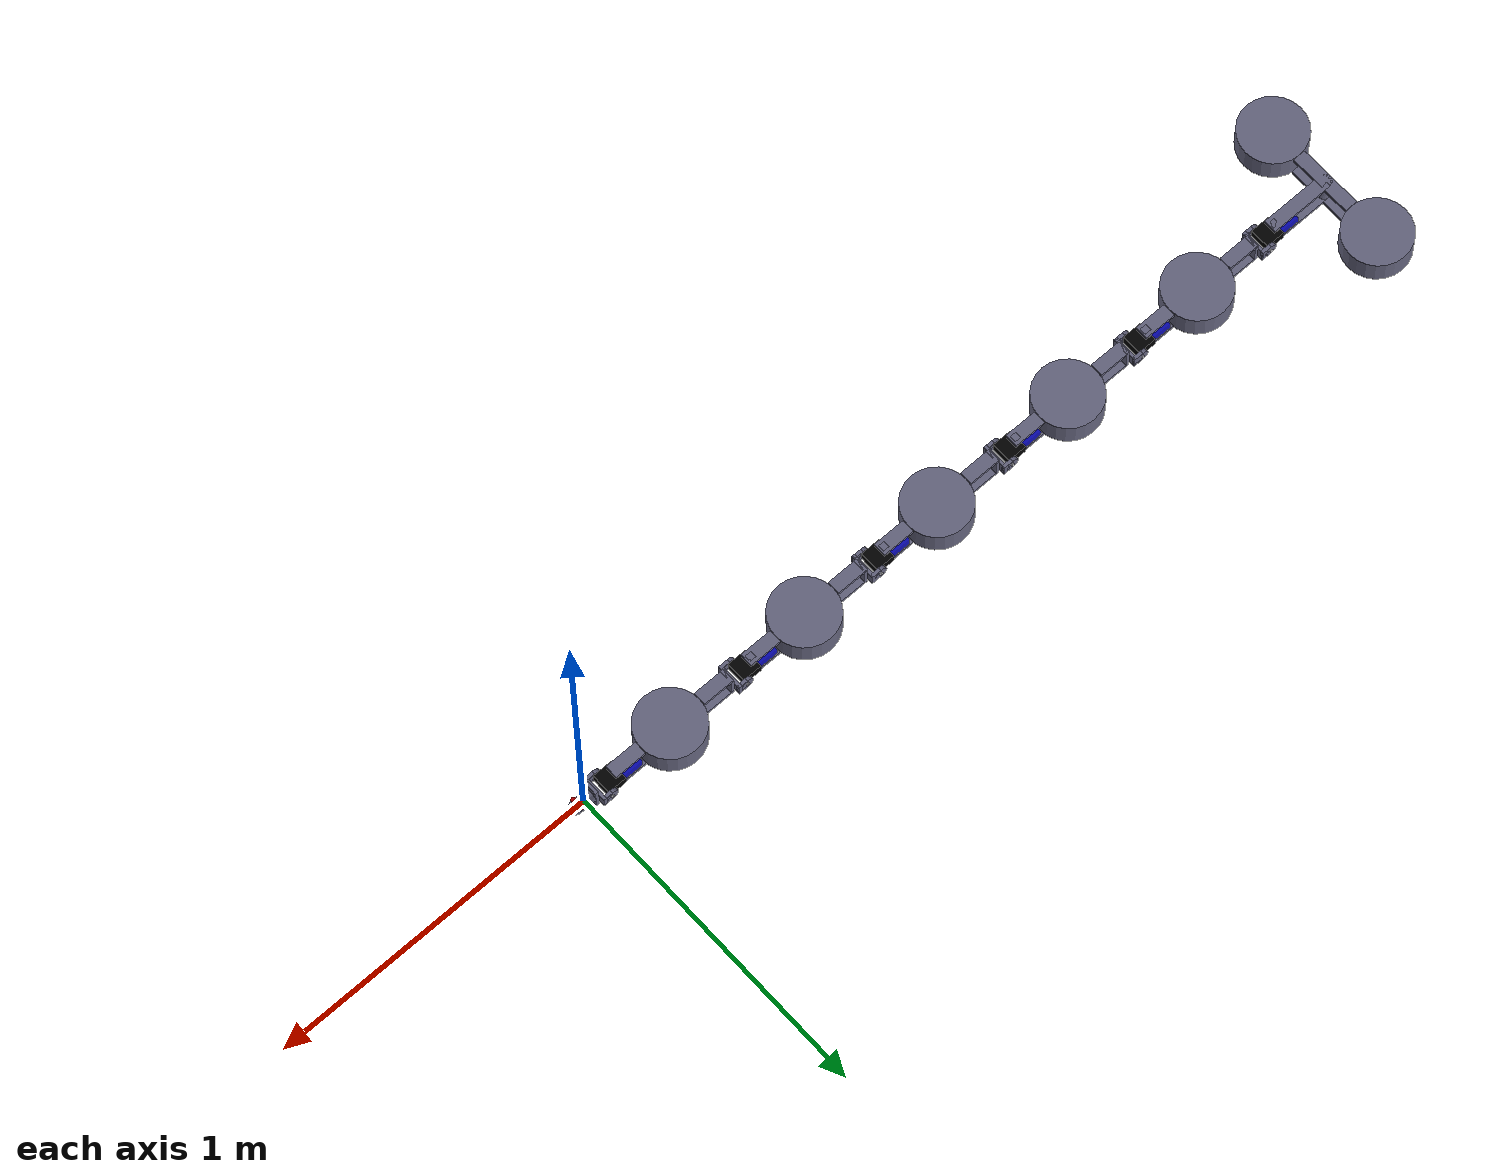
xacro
<?xml version="1.0"?>
<robot
    xmlns:xacro="http://www.ros.org/wiki/xacro" name="dolphin" >

  <include filename="$(find aerial_robot_model)/urdf/dolphin/dolphin_common.xacro" />
  <include filename="$(find aerial_robot_model)/urdf/dolphin/dolphin_link.urdf.xacro" />
  <include filename="$(find aerial_robot_model)/urdf/dolphin/dolphin_head.urdf.xacro" />

  <xacro:dolphin_head />
  <xacro:dolphin_link parent="link0" self="link1"/>
  <xacro:dolphin_link parent="link1" self="link2"/>
  <xacro:dolphin_link parent="link2" self="link3"/>
  <xacro:dolphin_link parent="link3" self="link4"/>
  <xacro:dolphin_link parent="link4" self="link5"/>
  <xacro:dolphin_end_link parent="link5" self="link6"/>

</robot>

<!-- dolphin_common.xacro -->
<robot
    xmlns:xacro="http://www.ros.org/wiki/xacro" name="dolphin_common" >

  <xacro:property name="abdomen_radius" value=".1" />
  <xacro:property name="abdomen_height" value=".08" />
  <xacro:property name="tail_len" value=".1" />
  <xacro:property name="tail_width" value=".04" />
  <xacro:property name="tail_height" value=".01" />
  <xacro:property name="servo_rod_radius" value=".0025" />

  <xacro:macro name="link_color">
    <material name="gray">
      <color rgba="0.4 .4 .5 0.9"/>
    </material>
  </xacro:macro>

</robot>

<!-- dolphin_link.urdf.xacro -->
<robot
    xmlns:xacro="http://www.ros.org/wiki/xacro" name="dolphin_link" >

  <xacro:macro name="dolphin_link" params="parent self">

    <link name="${self}_front_junction">
      <visual>
        <geometry>
          <box size="0.01 ${tail_width} ${abdomen_height}"/>
        </geometry>
        <xacro:link_color />
      </visual>
    </link>

    <joint name="${self}_front_junction_${self}_front_servo_rod_joint" type="fixed">
      <child link="${self}_front_servo_rod"/>
      <parent link="${self}_front_junction"/>
      <origin rpy="0 0 0" xyz="${-tail_len*.3+.005} 0 0"/>
    </joint>

    <link name="${self}_front_servo_rod_top">
      <visual>
        <geometry>
          <sphere radius="${servo_rod_radius*2}"/>
        </geometry>
        <material name="white">
          <color rgba="1 1 1 0.8"/>
        </material>
      </visual>
    </link>

    <joint name="${self}_front_servo_rod_top_${self}_front_servo_rod_joint" type="fixed">
      <parent link="${self}_front_servo_rod"/>
      <child link="${self}_front_servo_rod_top"/>
      <origin rpy="0 0 0" xyz="0 0 ${abdomen_height*.5}"/>
    </joint>

    <link name="${self}_front_servo_rod_bottom">
      <visual>
        <geometry>
          <sphere radius="${servo_rod_radius*2}"/>
        </geometry>
        <material name="white">
          <color rgba="1 1 1 0.8"/>
        </material>
      </visual>
    </link>

    <joint name="${self}_front_servo_rod_${self}_bottom_front_servo_rod_joint" type="fixed">
      <parent link="${self}_front_servo_rod"/>
      <child link="${self}_front_servo_rod_bottom"/>
      <origin rpy="0 0 0" xyz="0 0 -${abdomen_height*.5}"/>
    </joint>

    <link name="${self}_top_front_hinge_end">
      <visual>
        <geometry>
          <cylinder length="${tail_height}" radius="${tail_width*.5}"/>
        </geometry>
        <xacro:link_color />
      </visual>
    </link>

    <joint name="${self}_top_front_hinge_end_${self}_front_servo_rod_joint" type="fixed">
      <parent link="${self}_front_servo_rod"/>
      <child link="${self}_top_front_hinge_end"/>
      <origin rpy="0 0 0" xyz="0 0 ${abdomen_height*.5-tail_height*.5}"/>
    </joint>

    <link name="${self}_bottom_front_hinge_end">
      <visual>
        <geometry>
          <cylinder length="${tail_height}" radius="${tail_width*.5}"/>
        </geometry>
        <xacro:link_color />
      </visual>
    </link>

    <joint name="${self}_bottom_front_hinge_end_${self}_front_servo_rod_joint" type="fixed">
      <parent link="${self}_front_servo_rod"/>
      <child link="${self}_bottom_front_hinge_end"/>
      <origin rpy="0 0 0" xyz="0 0 ${-abdomen_height*.5+tail_height*.5}"/>
    </joint>

    <link name="${self}_top_front_hinge">
      <visual>
        <geometry>
          <box size="${tail_len*.3} ${tail_width} ${tail_height}"/>
        </geometry>
        <xacro:link_color />
      </visual>
    </link>

    <joint name="${self}_top_front_hinge_${self}_top_front_hinge_end_joint" type="fixed">
      <parent link="${self}_top_front_hinge_end"/>
      <child link="${self}_top_front_hinge"/>
      <origin rpy="0 0 0" xyz="${tail_len*.15} 0 0"/>
    </joint>

    <link name="${self}_bottom_front_hinge">
      <visual>
        <geometry>
          <box size="${tail_len*.3} ${tail_width} ${tail_height}"/>
        </geometry>
        <xacro:link_color />
      </visual>
    </link>

    <joint name="${self}_bottom_front_hinge_${self}_bottom_front_hinge_end_joint" type="fixed">
      <parent link="${self}_bottom_front_hinge_end"/>
      <child link="${self}_bottom_front_hinge"/>
      <origin rpy="0 0 0" xyz="${tail_len*.15} 0 0"/>
    </joint>

    <link name="${self}_front_servo_rod">
      <visual>
        <geometry>
          <cylinder length="${abdomen_height}" radius="${servo_rod_radius}"/>
        </geometry>
        <material name="white">
          <color rgba="1 1 1 0.8"/>
        </material>
      </visual>
    </link>

    <joint name="${self}_front_servo_rod_${self}_front_servo_joint" type="continuous">
      <child link="${self}_front_servo"/>
      <parent link="${self}_front_servo_rod"/>
      <origin xyz="${-tail_len*.3+.005} 0 0"/>
      <axis xyz="0 0 1"/>
    </joint>

    <link name="${self}_front_servo">
      <visual>
        <geometry>
          <box size="${tail_len*.6} ${tail_len*.3} ${abdomen_height-tail_height*2}"/>
        </geometry>
        <material name="black">
          <color rgba="0 0 0 1"/>
        </material>
      </visual>
    </link>

    <joint name="${self}_front_servo_${self}_abdomen_joint" type="fixed">
      <child link="${self}_abdomen"/>
      <parent link="${self}_front_servo"/>
      <origin rpy="1.5708 0 0"
              xyz="${-abdomen_radius-tail_len-(tail_len*.6-tail_width-.01)*.5} 0 0"/>
    </joint>

    <link name="${self}_front_servo_column">
      <visual>
        <geometry>
          <box size="${tail_width*.5} ${tail_width*.5} ${abdomen_height}"/>
        </geometry>
        <xacro:link_color />
      </visual>
    </link>

    <joint name="${self}_front_servo_column_${self}_front_servo_joint" type="fixed">
      <parent link="${self}_front_servo"/>
      <child link="${self}_front_servo_column"/>
      <origin rpy="1.5708 0 0" xyz="${-tail_len*.2} 0 0 "/>
    </joint>

    <link name="${self}_battery">
      <visual>
        <geometry>
          <box size="${tail_len*.6} ${tail_len*.35} ${tail_len*.25}"/>
        </geometry>
        <material name="blue">
          <color rgba="0 0 .8 0.8"/>
        </material>
      </visual>
    </link>

    <joint name="${self}_baterry_${self}_abdomen_joint" type="fixed">
      <parent link="${self}_abdomen"/>
      <child link="${self}_battery"/>
      <origin xyz="${abdomen_radius+tail_len*.4} 0 ${-abdomen_height*.5+tail_len*.125+tail_height}"/>
    </joint>

    <link name="${self}_front_bottom_tail">
      <visual>
        <geometry>
          <box size="${tail_len} ${tail_width} ${tail_height}"/>
        </geometry>
        <xacro:link_color />
      </visual>
    </link>

    <joint name="${self}_front_bottom_tail_${self}_abdomen_joint" type="fixed">
      <parent link="${self}_abdomen"/>
      <child link="${self}_front_bottom_tail"/>
      <origin rpy="0 0 0" xyz="${abdomen_radius+tail_len*.5} 0 ${-abdomen_height*.5+tail_height*.5}"/>
    </joint>

    <link name="${self}_front_top_tail">
      <visual>
        <geometry>
          <box size="${tail_len} ${tail_width} ${tail_height}"/>
        </geometry>
        <xacro:link_color />
      </visual>
    </link>

    <joint name="${self}_front_top_tail_${self}_abdomen_joint" type="fixed">
      <parent link="${self}_abdomen"/>
      <child link="${self}_front_top_tail"/>
      <origin rpy="0 0 0" xyz="${abdomen_radius+tail_len*.5} 0 ${abdomen_height*.5-tail_height*.5}"/>
    </joint>

    <link name="${self}_abdomen">
      <visual>
        <geometry>
          <cylinder length="${abdomen_height}" radius="${abdomen_radius}"/>
        </geometry>
        <xacro:link_color />
      </visual>
    </link>

    <link name="${self}_rear_bottom_tail">
      <visual>
        <geometry>
          <box size="${tail_len} ${tail_width} ${tail_height}"/>
        </geometry>
        <xacro:link_color />
      </visual>
    </link>

    <joint name="${self}_rear_bottom_tail_${self}_abdomen_joint" type="fixed">
      <parent link="${self}_abdomen"/>
      <child link="${self}_rear_bottom_tail"/>
      <origin rpy="0 0 0" xyz="${-abdomen_radius-tail_len*.5} 0 ${-abdomen_height*.5+tail_height*.5}"/>
    </joint>

    <link name="${self}_rear_top_tail">
      <visual>
        <geometry>
          <box size="${tail_len} ${tail_width} ${tail_height}"/>
        </geometry>
        <xacro:link_color />
      </visual>
    </link>

    <joint name="${self}_rear_top_tail_${self}_abdomen_joint" type="fixed">
      <parent link="${self}_abdomen"/>
      <child link="${self}_rear_top_tail"/>
      <origin rpy="0 0 0" xyz="${-abdomen_radius-tail_len*.5} 0 ${abdomen_height*.5-tail_height*.5}"/>
    </joint>

    <link name="${self}_rear_junction">
      <visual>
        <geometry>
          <box size="0.01 ${tail_width} ${abdomen_height}"/>
        </geometry>
        <xacro:link_color />
      </visual>
    </link>

    <joint name="${self}_rear_junction_${self}_abdomen_joint" type="fixed">
      <parent link="${self}_abdomen"/>
      <child link="${self}_rear_junction"/>
      <origin rpy="0 0 0" xyz="${-abdomen_radius-tail_len+.005} 0 0"/>
    </joint>

    <joint name="${parent}_${self}_joint" type="fixed">
      <parent link="${parent}_rear_junction"/>
      <child link="${self}_front_junction"/>
      <origin rpy="-1.5708  0 0" xyz="-0.01 0 0"/>
    </joint>

  </xacro:macro>

  <xacro:macro name="dolphin_end_link" params="parent self">

    <link name="${self}_front_junction">
      <visual>
        <geometry>
          <box size="0.01 ${tail_width} ${abdomen_height}"/>
        </geometry>
        <xacro:link_color />
      </visual>
    </link>

    <joint name="${self}_front_junction_${self}_front_servo_rod_joint" type="fixed">
      <child link="${self}_front_servo_rod"/>
      <parent link="${self}_front_junction"/>
      <origin rpy="0 0 0" xyz="${-tail_len*.3+.005} 0 0"/>
    </joint>

    <link name="${self}_front_servo_rod_top">
      <visual>
        <geometry>
          <sphere radius="${servo_rod_radius*2}"/>
        </geometry>
        <material name="white">
          <color rgba="1 1 1 0.8"/>
        </material>
      </visual>
    </link>

    <joint name="${self}_front_servo_rod_top_${self}_front_servo_rod_joint" type="fixed">
      <parent link="${self}_front_servo_rod"/>
      <child link="${self}_front_servo_rod_top"/>
      <origin rpy="0 0 0" xyz="0 0 ${abdomen_height*.5}"/>
    </joint>

    <link name="${self}_front_servo_rod_bottom">
      <visual>
        <geometry>
          <sphere radius="${servo_rod_radius*2}"/>
        </geometry>
        <material name="white">
          <color rgba="1 1 1 0.8"/>
        </material>
      </visual>
    </link>

    <joint name="${self}_front_servo_rod_${self}_bottom_front_servo_rod_joint" type="fixed">
      <parent link="${self}_front_servo_rod"/>
      <child link="${self}_front_servo_rod_bottom"/>
      <origin rpy="0 0 0" xyz="0 0 -${abdomen_height*.5}"/>
    </joint>

    <link name="${self}_top_front_hinge_end">
      <visual>
        <geometry>
          <cylinder length="${tail_height}" radius="${tail_width*.5}"/>
        </geometry>
        <xacro:link_color />
      </visual>
    </link>

    <joint name="${self}_top_front_hinge_end_${self}_front_servo_rod_joint" type="fixed">
      <parent link="${self}_front_servo_rod"/>
      <child link="${self}_top_front_hinge_end"/>
      <origin rpy="0 0 0" xyz="0 0 ${abdomen_height*.5-tail_height*.5}"/>
    </joint>

    <link name="${self}_bottom_front_hinge_end">
      <visual>
        <geometry>
          <cylinder length="${tail_height}" radius="${tail_width*.5}"/>
        </geometry>
        <xacro:link_color />
      </visual>
    </link>

    <joint name="${self}_bottom_front_hinge_end_${self}_front_servo_rod_joint" type="fixed">
      <parent link="${self}_front_servo_rod"/>
      <child link="${self}_bottom_front_hinge_end"/>
      <origin rpy="0 0 0" xyz="0 0 ${-abdomen_height*.5+tail_height*.5}"/>
    </joint>

    <link name="${self}_top_front_hinge">
      <visual>
        <geometry>
          <box size="${tail_len*.3} ${tail_width} ${tail_height}"/>
        </geometry>
        <xacro:link_color />
      </visual>
    </link>

    <joint name="${self}_top_front_hinge_${self}_top_front_hinge_end_joint" type="fixed">
      <parent link="${self}_top_front_hinge_end"/>
      <child link="${self}_top_front_hinge"/>
      <origin rpy="0 0 0" xyz="${tail_len*.15} 0 0"/>
    </joint>

    <link name="${self}_bottom_front_hinge">
      <visual>
        <geometry>
          <box size="${tail_len*.3} ${tail_width} ${tail_height}"/>
        </geometry>
        <xacro:link_color />
      </visual>
    </link>

    <joint name="${self}_bottom_front_hinge_${self}_bottom_front_hinge_end_joint" type="fixed">
      <parent link="${self}_bottom_front_hinge_end"/>
      <child link="${self}_bottom_front_hinge"/>
      <origin rpy="0 0 0" xyz="${tail_len*.15} 0 0"/>
    </joint>

    <link name="${self}_front_servo_rod">
      <visual>
        <geometry>
          <cylinder length="${abdomen_height}" radius="${servo_rod_radius}"/>
        </geometry>
        <material name="white">
          <color rgba="1 1 1 0.8"/>
        </material>
      </visual>
    </link>

    <joint name="${self}_front_servo_rod_${self}_front_servo_joint" type="continuous">
      <child link="${self}_front_servo"/>
      <parent link="${self}_front_servo_rod"/>
      <origin xyz="${-tail_len*.3+.005} 0 0"/>
      <axis xyz="0 0 1"/>
    </joint>

    <link name="${self}_front_servo">
      <visual>
        <geometry>
          <box size="${tail_len*.6} ${tail_len*.3} ${abdomen_height-tail_height*2}"/>
        </geometry>
        <material name="black">
          <color rgba="0 0 0 1"/>
        </material>
      </visual>
    </link>

    <joint name="${self}_front_servo_${self}_abdomen_joint" type="fixed">
      <child link="${self}_abdomen"/>
      <parent link="${self}_front_servo"/>
      <origin rpy="1.5708 0 0"
              xyz="${-tail_len*2-(tail_len*.6-tail_width-.01)*.5} 0 0"/>
    </joint>

    <link name="${self}_front_servo_column">
      <visual>
        <geometry>
          <box size="${tail_width*.5} ${tail_width*.5} ${abdomen_height}"/>
        </geometry>
        <xacro:link_color />
      </visual>
    </link>

    <joint name="${self}_front_servo_column_${self}_front_servo_joint" type="fixed">
      <parent link="${self}_front_servo"/>
      <child link="${self}_front_servo_column"/>
      <origin rpy="1.5708 0 0" xyz="${-tail_len*.2} 0 0 "/>
    </joint>

    <link name="${self}_battery">
      <visual>
        <geometry>
          <box size="${tail_len*.6} ${tail_len*.35} ${tail_len*.25}"/>
        </geometry>
        <material name="blue">
          <color rgba="0 0 .8 0.8"/>
        </material>
      </visual>
    </link>

    <joint name="${self}_baterry_${self}_abdomen_joint" type="fixed">
      <parent link="${self}_abdomen"/>
      <child link="${self}_battery"/>
      <origin xyz="${tail_len*1.4} 0 ${-abdomen_height*.5+tail_len*.125+tail_height}"/>
    </joint>

    <link name="${self}_front_bottom_tail">
      <visual>
        <geometry>
          <box size="${tail_len*2} ${tail_width} ${tail_height}"/>
        </geometry>
        <xacro:link_color />
      </visual>
    </link>

    <joint name="${self}_front_bottom_tail_${self}_abdomen_joint" type="fixed">
      <parent link="${self}_abdomen"/>
      <child link="${self}_front_bottom_tail"/>
      <origin rpy="0 0 0" xyz="${tail_len} 0 ${-abdomen_height*.5+tail_height*.5}"/>
    </joint>

    <link name="${self}_front_top_tail">
      <visual>
        <geometry>
          <box size="${tail_len*2} ${tail_width} ${tail_height}"/>
        </geometry>
        <xacro:link_color />
      </visual>
    </link>

    <joint name="${self}_front_top_tail_${self}_abdomen_joint" type="fixed">
      <parent link="${self}_abdomen"/>
      <child link="${self}_front_top_tail"/>
      <origin rpy="0 0 0" xyz="${tail_len} 0 ${abdomen_height*.5-tail_height*.5}"/>
    </joint>

    <link name="${self}_abdomen">
      <visual>
        <geometry>
          <cylinder length="${abdomen_height}" radius="${tail_width*.5}"/>
        </geometry>
        <xacro:link_color />
      </visual>
    </link>

    <link name="${self}_bottom_abdomen_rod">
      <visual>
        <geometry>
          <box size="${tail_width} ${tail_len*2} ${tail_height}"/>
        </geometry>
        <xacro:link_color />
      </visual>
    </link>

    <joint name="${self}_bottom_abdomen_rod_${self}_abdomen_joint" type="fixed">
      <parent link="${self}_abdomen"/>
      <child link="${self}_bottom_abdomen_rod"/>
      <origin rpy="0 0 0" xyz="0 0 ${-abdomen_height*.5+tail_height*.5}"/>
    </joint>

    <link name="${self}_top_abdomen_rod">
      <visual>
        <geometry>
          <box size="${tail_width} ${tail_len*2} ${tail_height}"/>
        </geometry>
        <xacro:link_color />
      </visual>
    </link>

    <joint name="${self}_top_abdomen_rod_${self}_abdomen_joint" type="fixed">
      <parent link="${self}_abdomen"/>
      <child link="${self}_top_abdomen_rod"/>
      <origin rpy="0 0 0" xyz="0 0 ${abdomen_height*.5-tail_height*.5}"/>
    </joint>

    <link name="${self}_left_semi_abdomen">
      <visual>
        <geometry>
          <cylinder length="${abdomen_height}" radius="${abdomen_radius}"/>
        </geometry>
        <xacro:link_color />
      </visual>
    </link>

    <joint name="${self}_left_semi_abdomen_rod_${self}_abdomen_joint" type="fixed">
      <parent link="${self}_abdomen"/>
      <child link="${self}_left_semi_abdomen"/>
      <origin rpy="0 0 0" xyz="0 ${abdomen_radius+tail_len} 0"/>
    </joint>

    <link name="${self}_right_semi_abdomen">
      <visual>
        <geometry>
          <cylinder length="${abdomen_height}" radius="${abdomen_radius}"/>
        </geometry>
        <xacro:link_color />
      </visual>
    </link>

    <joint name="${self}_right_semi_abdomen_rod_${self}_abdomen_joint" type="fixed">
      <parent link="${self}_abdomen"/>
      <child link="${self}_right_semi_abdomen"/>
      <origin rpy="0 0 0" xyz="0 ${-abdomen_radius-tail_len} 0"/>
    </joint>

    <joint name="${parent}_${self}_joint" type="fixed">
      <parent link="${parent}_rear_junction"/>
      <child link="${self}_front_junction"/>
      <origin rpy="-1.5708  0 0" xyz="-0.01 0 0"/>
    </joint>

  </xacro:macro>

</robot>

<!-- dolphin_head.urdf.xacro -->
<robot
    xmlns:xacro="http://www.ros.org/wiki/xacro" name="dolphin_head" >

  <xacro:macro name="dolphin_head">
    <link name="left_eye">
      <visual>
        <geometry>
          <sphere radius="${tail_width*.2}"/>
        </geometry>
        <material name="Red">
          <color rgba=".7 .0 .0 1"/>
        </material>
      </visual>
    </link>

    <joint name="left_eye_head_cylinder_joint" type="fixed">
      <parent link="head_cylinder"/>
      <child link="left_eye"/>
      <origin rpy="0 0 0" xyz="${tail_len*.2} ${tail_width*.5*.707} ${tail_width*.5*.707}"/>
    </joint>

    <link name="right_eye">
      <visual>
        <geometry>
          <sphere radius="${tail_width*.2}"/>
        </geometry>
        <material name="Red">
          <color rgba=".7 .0 .0 1"/>
        </material>
      </visual>
    </link>

    <joint name="right_eye_head_cylinder_joint" type="fixed">
      <parent link="head_cylinder"/>
      <child link="right_eye"/>
      <origin rpy="0 0 0" xyz="${tail_len*.2} ${-tail_width*.5*.707} ${tail_width*.5*.707}"/>
    </joint>

    <link name="head_sphere">
      <visual>
        <geometry>
          <sphere radius="${tail_width*.5}"/>
        </geometry>
        <xacro:link_color />
      </visual>
    </link>

    <joint name="head_sphere_head_cylinder_joint" type="fixed">
      <parent link="head_cylinder"/>
      <child link="head_sphere"/>
      <origin rpy="0 0 0" xyz="${tail_len*.25} 0 0"/>
    </joint>

    <link name="head_cylinder">
      <visual>
        <geometry>
          <cylinder length="${tail_len*.5}" radius="${tail_width*.5}"/>
        </geometry>
        <origin rpy="0 1.57075 0 " xyz="0 0 0"/>
        <xacro:link_color />
      </visual>
    </link>

    <link name="link0_rear_junction">
      <visual>
        <geometry>
          <box size="0.01 ${tail_width} ${abdomen_height}"/>
        </geometry>
        <xacro:link_color />
      </visual>
    </link>

    <joint name="link0_rear_junction_abdomen_joint" type="fixed">
      <parent link="head_cylinder"/>
      <child link="link0_rear_junction"/>
      <origin rpy="0 0 0" xyz="${-tail_len*.25-.005} 0 0"/>
    </joint>

  </xacro:macro>

</robot>
